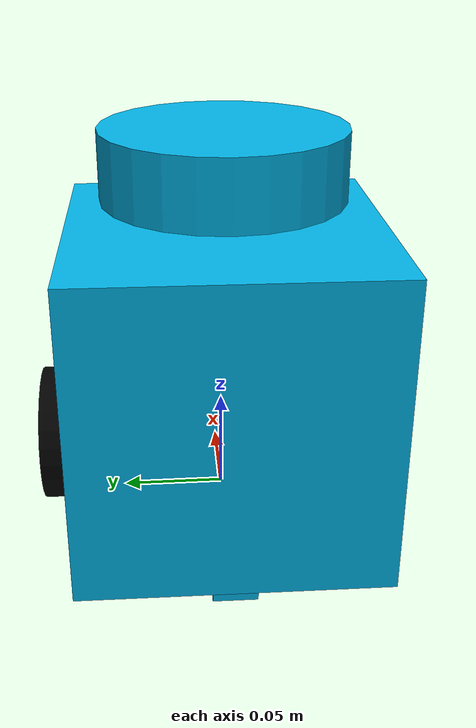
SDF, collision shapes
<?xml version='1.0'?>
<sdf version='1.7'>
  <model name='sandwich_bot'>
    <link name='base_footprint'>
      <inertial>
        <pose>-0.00429 0 0.030731 0 -0 0</pose>
        <mass>0.944735</mass>
        <inertia>
          <ixx>0.00717909</ixx>
          <ixy>-1.22941e-05</ixy>
          <ixz>0.000576549</ixz>
          <iyy>0.00721817</iyy>
          <iyz>-5.01209e-06</iyz>
          <izz>0.00413858</izz>
        </inertia>
      </inertial>
      <sensor name='camera_left' type='camera'>
        <camera>
          <horizontal_fov>1.047</horizontal_fov>
          <image>
            <width>320</width>
            <height>240</height>
          </image>
          <clip>
            <near>0.1</near>
            <far>100</far>
          </clip>
        </camera>
        <always_on>1</always_on>
        <update_rate>120</update_rate>
        <visualize>1</visualize>
        <topic>stereo_camera/left/image_raw</topic>
        <pose>0.039 0.03 0.155 0 -0 0</pose>
      </sensor>
      <sensor name='camera_right' type='camera'>
        <camera>
          <horizontal_fov>1.047</horizontal_fov>
          <image>
            <width>320</width>
            <height>240</height>
          </image>
          <clip>
            <near>0.1</near>
            <far>100</far>
          </clip>
        </camera>
        <always_on>1</always_on>
        <update_rate>120</update_rate>
        <visualize>1</visualize>
        <topic>stereo_camera/right/image_raw</topic>
        <pose>0.039 -0.03 0.155 0 -0 0</pose>
      </sensor>
      <sensor name='imu_sensor' type='imu'>
        <always_on>1</always_on>
        <update_rate>100</update_rate>
        <visualize>1</visualize>
        <topic>imu</topic>
        <pose>-0.032 0 0.078 0 -0 0</pose>
        <imu/>
      </sensor>
      <sensor name='gpu_lidar' type='gpu_lidar'>
        <topic>lidar</topic>
        <update_rate>5.5</update_rate>
        <ray>
          <scan>
            <horizontal>
              <samples>360</samples>
              <resolution>1</resolution>
              <min_angle>0</min_angle>
              <max_angle>6.28319</max_angle>
            </horizontal>
            <vertical>
              <samples>1</samples>
              <resolution>0.01</resolution>
              <min_angle>0</min_angle>
              <max_angle>0</max_angle>
            </vertical>
          </scan>
          <range>
            <min>0.15</min>
            <max>5.5</max>
            <resolution>0.017</resolution>
          </range>
          <noise>
            <type>gaussian</type>
            <mean>0</mean>
            <stddev>0.01</stddev>
          </noise>
        </ray>
        <always_on>1</always_on>
        <visualize>1</visualize>
        <pose>-0.032 0 0.182 0 -0 0</pose>
      </sensor>
      <self_collide>0</self_collide>
      <enable_wind>0</enable_wind>
      <kinematic>0</kinematic>
      <pose>0 0 0 0 -0 0</pose>
      <visual name='base_footprint_fixed_joint_lump__camera_link_visual_1'>
        <pose>0.035 0 0.155 1.57 -0 1.57</pose>
        <geometry>
          <mesh>
            <scale>0.001 0.001 0.001</scale>
            <uri>https://fuel.ignitionrobotics.org/1.0/rushikeshhalle/models/sandwich_bot_2_0_description/4/files/meshes/stereo_camera.stl</uri>
          </mesh>
        </geometry>
        <material>
          <ambient>0 0.7 0.9 1</ambient>
          <diffuse>0 0.7 0.9 1</diffuse>
          <shader type='pixel'/>
          <script>
            <name>ModelPreview_1::base_footprint::base_footprint_fixed_joint_lump__camera_link_visual_1_MATERIAL_</name>
            <uri>__default__</uri>
          </script>
        </material>
        <transparency>0</transparency>
        <cast_shadows>1</cast_shadows>
      </visual>
      <visual name='base_footprint_fixed_joint_lump__base_link_visual'>
        <pose>-0.032 0 0.01 0 -0 0</pose>
        <geometry>
          <mesh>
            <scale>0.001 0.001 0.001</scale>
            <uri>https://fuel.ignitionrobotics.org/1.0/rushikeshhalle/models/sandwich_bot_2_0_description/4/files/meshes/base.stl</uri>
          </mesh>
        </geometry>
        <material>
          <ambient>0.175 0.175 0.175 1</ambient>
          <diffuse>0.175 0.175 0.175 1</diffuse>
          <shader type='pixel'/>
          <script>
            <name>ModelPreview_1::base_footprint::base_footprint_fixed_joint_lump__base_link_visual_MATERIAL_</name>
            <uri>__default__</uri>
          </script>
        </material>
        <transparency>0</transparency>
        <cast_shadows>1</cast_shadows>
      </visual>
      <visual name='base_footprint_fixed_joint_lump__camera_link_left_visual_2'>
        <pose>0.039 0.03 0.155 1.57 -0 1.57</pose>
        <geometry>
          <box>
            <size>0.001 0.001 0.001</size>
          </box>
        </geometry>
        <material>
          <ambient>1 0 0 1</ambient>
          <diffuse>1 0 0 1</diffuse>
          <shader type='pixel'/>
          <script>
            <name>ModelPreview_1::base_footprint::base_footprint_fixed_joint_lump__camera_link_left_visual_2_MATERIAL_</name>
            <uri>__default__</uri>
          </script>
        </material>
        <transparency>0</transparency>
        <cast_shadows>1</cast_shadows>
      </visual>
      <visual name='base_footprint_fixed_joint_lump__camera_link_right_visual_3'>
        <pose>0.039 -0.03 0.155 1.57 -0 1.57</pose>
        <geometry>
          <box>
            <size>0.001 0.001 0.001</size>
          </box>
        </geometry>
        <material>
          <ambient>0.5 0.5 0 1</ambient>
          <diffuse>0.5 0.5 0 1</diffuse>
          <shader type='pixel'/>
          <script>
            <name>ModelPreview_1::base_footprint::base_footprint_fixed_joint_lump__camera_link_right_visual_3_MATERIAL_</name>
            <uri>__default__</uri>
          </script>
        </material>
        <transparency>0</transparency>
        <cast_shadows>1</cast_shadows>
      </visual>
      <visual name='base_footprint_fixed_joint_lump__base_scan_visual_4'>
        <pose>-0.032 0 0.182 0 -0 0</pose>
        <geometry>
          <cylinder>
            <length>0.0315</length>
            <radius>0.055</radius>
          </cylinder>
        </geometry>
        <material>
          <ambient>1 0 0 1</ambient>
          <diffuse>1 0 0 1</diffuse>
          <shader type='pixel'/>
          <script>
            <name>ModelPreview_1::base_footprint::base_footprint_fixed_joint_lump__base_scan_visual_4_MATERIAL_</name>
            <uri>__default__</uri>
          </script>
        </material>
        <transparency>0</transparency>
        <cast_shadows>1</cast_shadows>
      </visual>
      <collision name='base_footprint_fixed_joint_lump__base_link_collision'>
        <laser_retro>0</laser_retro>
        <max_contacts>10</max_contacts>
        <pose>-0.032 0 0.08 0 -0 0</pose>
        <geometry>
          <box>
            <size>0.14 0.14 0.143</size>
          </box>
        </geometry>
        <surface>
          <friction>
            <ode>
              <mu>1</mu>
              <mu2>1</mu2>
              <fdir1>0 0 0</fdir1>
              <slip1>0</slip1>
              <slip2>0</slip2>
            </ode>
            <torsional>
              <coefficient>1</coefficient>
              <patch_radius>0</patch_radius>
              <surface_radius>0</surface_radius>
              <use_patch_radius>1</use_patch_radius>
              <ode>
                <slip>0</slip>
              </ode>
            </torsional>
          </friction>
          <bounce>
            <restitution_coefficient>0</restitution_coefficient>
            <threshold>1e+06</threshold>
          </bounce>
          <contact>
            <collide_without_contact>0</collide_without_contact>
            <collide_without_contact_bitmask>1</collide_without_contact_bitmask>
            <collide_bitmask>1</collide_bitmask>
            <ode>
              <soft_cfm>0</soft_cfm>
              <soft_erp>0.2</soft_erp>
              <kp>1e+13</kp>
              <kd>1</kd>
              <max_vel>0.01</max_vel>
              <min_depth>0</min_depth>
            </ode>
            <bullet>
              <split_impulse>1</split_impulse>
              <split_impulse_penetration_threshold>-0.01</split_impulse_penetration_threshold>
              <soft_cfm>0</soft_cfm>
              <soft_erp>0.2</soft_erp>
              <kp>1e+13</kp>
              <kd>1</kd>
            </bullet>
          </contact>
        </surface>
      </collision>
      <collision name='base_footprint_fixed_joint_lump__camera_link_collision_1'>
        <laser_retro>0</laser_retro>
        <max_contacts>10</max_contacts>
        <pose>0.035 0 0.155 0 -0 0</pose>
        <geometry>
          <box>
            <size>0.01 0.08 0.01</size>
          </box>
        </geometry>
        <surface>
          <friction>
            <ode>
              <mu>1</mu>
              <mu2>1</mu2>
              <fdir1>0 0 0</fdir1>
              <slip1>0</slip1>
              <slip2>0</slip2>
            </ode>
            <torsional>
              <coefficient>1</coefficient>
              <patch_radius>0</patch_radius>
              <surface_radius>0</surface_radius>
              <use_patch_radius>1</use_patch_radius>
              <ode>
                <slip>0</slip>
              </ode>
            </torsional>
          </friction>
          <bounce>
            <restitution_coefficient>0</restitution_coefficient>
            <threshold>1e+06</threshold>
          </bounce>
          <contact>
            <collide_without_contact>0</collide_without_contact>
            <collide_without_contact_bitmask>1</collide_without_contact_bitmask>
            <collide_bitmask>1</collide_bitmask>
            <ode>
              <soft_cfm>0</soft_cfm>
              <soft_erp>0.2</soft_erp>
              <kp>1e+13</kp>
              <kd>1</kd>
              <max_vel>0.01</max_vel>
              <min_depth>0</min_depth>
            </ode>
            <bullet>
              <split_impulse>1</split_impulse>
              <split_impulse_penetration_threshold>-0.01</split_impulse_penetration_threshold>
              <soft_cfm>0</soft_cfm>
              <soft_erp>0.2</soft_erp>
              <kp>1e+13</kp>
              <kd>1</kd>
            </bullet>
          </contact>
        </surface>
      </collision>
      <collision name='base_footprint_fixed_joint_lump__caster_back_link_collision_2'>
        <laser_retro>0</laser_retro>
        <max_contacts>10</max_contacts>
        <pose>-0.081 1e-06 0.004501 -1.57 0 0</pose>
        <geometry>
          <box>
            <size>0.03 0.009 0.02</size>
          </box>
        </geometry>
        <surface>
          <friction>
            <ode>
              <mu>0</mu>
              <mu2>0</mu2>
              <fdir1>0 0 0</fdir1>
              <slip1>0</slip1>
              <slip2>0</slip2>
            </ode>
            <torsional>
              <coefficient>1</coefficient>
              <patch_radius>0</patch_radius>
              <surface_radius>0</surface_radius>
              <use_patch_radius>1</use_patch_radius>
              <ode>
                <slip>0</slip>
              </ode>
            </torsional>
          </friction>
          <bounce>
            <restitution_coefficient>0</restitution_coefficient>
            <threshold>1e+06</threshold>
          </bounce>
          <contact>
            <collide_without_contact>0</collide_without_contact>
            <collide_without_contact_bitmask>1</collide_without_contact_bitmask>
            <collide_bitmask>1</collide_bitmask>
            <ode>
              <soft_cfm>0</soft_cfm>
              <soft_erp>0.2</soft_erp>
              <kp>1e+13</kp>
              <kd>1</kd>
              <max_vel>0.01</max_vel>
              <min_depth>0</min_depth>
            </ode>
            <bullet>
              <split_impulse>1</split_impulse>
              <split_impulse_penetration_threshold>-0.01</split_impulse_penetration_threshold>
              <soft_cfm>0</soft_cfm>
              <soft_erp>0.2</soft_erp>
              <kp>1e+13</kp>
              <kd>1</kd>
            </bullet>
          </contact>
        </surface>
      </collision>
      <collision name='base_footprint_fixed_joint_lump__base_scan_collision_3'>
        <laser_retro>0</laser_retro>
        <max_contacts>10</max_contacts>
        <pose>-0.017 0 0.1755 0 -0 0</pose>
        <geometry>
          <cylinder>
            <radius>0.055</radius>
            <length>0.0315</length>
          </cylinder>
        </geometry>
        <surface>
          <friction>
            <ode>
              <mu>1</mu>
              <mu2>1</mu2>
              <fdir1>0 0 0</fdir1>
              <slip1>0</slip1>
              <slip2>0</slip2>
            </ode>
            <torsional>
              <coefficient>1</coefficient>
              <patch_radius>0</patch_radius>
              <surface_radius>0</surface_radius>
              <use_patch_radius>1</use_patch_radius>
              <ode>
                <slip>0</slip>
              </ode>
            </torsional>
          </friction>
          <bounce>
            <restitution_coefficient>0</restitution_coefficient>
            <threshold>1e+06</threshold>
          </bounce>
          <contact>
            <collide_without_contact>0</collide_without_contact>
            <collide_without_contact_bitmask>1</collide_without_contact_bitmask>
            <collide_bitmask>1</collide_bitmask>
            <ode>
              <soft_cfm>0</soft_cfm>
              <soft_erp>0.2</soft_erp>
              <kp>1e+13</kp>
              <kd>1</kd>
              <max_vel>0.01</max_vel>
              <min_depth>0</min_depth>
            </ode>
            <bullet>
              <split_impulse>1</split_impulse>
              <split_impulse_penetration_threshold>-0.01</split_impulse_penetration_threshold>
              <soft_cfm>0</soft_cfm>
              <soft_erp>0.2</soft_erp>
              <kp>1e+13</kp>
              <kd>1</kd>
            </bullet>
          </contact>
        </surface>
      </collision>
    </link>
    <link name='wheel_left_link'>
      <pose>0 0.08 0.033 -1.57 0 0</pose>
      <inertial>
        <pose>0 0 0 0 -0 0</pose>
        <mass>0.0284989</mass>
        <inertia>
          <ixx>1.11756e-05</ixx>
          <ixy>-4.23698e-11</ixy>
          <ixz>-5.93817e-09</ixz>
          <iyy>1.11924e-05</iyy>
          <iyz>-1.44001e-11</iyz>
          <izz>2.07126e-05</izz>
        </inertia>
      </inertial>
      <self_collide>0</self_collide>
      <enable_wind>0</enable_wind>
      <kinematic>0</kinematic>
      <visual name='wheel_left_link_visual'>
        <pose>0 0 0 1.57 -0 0</pose>
        <geometry>
          <mesh>
            <scale>0.001 0.001 0.001</scale>
            <uri>https://fuel.ignitionrobotics.org/1.0/rushikeshhalle/models/sandwich_bot_2_0_description/4/files/meshes/left_tire.stl</uri>
          </mesh>
        </geometry>
        <material>
          <ambient>0 0 0 1</ambient>
          <diffuse>0 0 0 1</diffuse>
          <shader type='pixel'/>
          <script>
            <name>ModelPreview_1::wheel_left_link::wheel_left_link_visual_MATERIAL_</name>
            <uri>__default__</uri>
          </script>
        </material>
        <transparency>0</transparency>
        <cast_shadows>1</cast_shadows>
      </visual>
      <collision name='wheel_left_link_collision'>
        <laser_retro>0</laser_retro>
        <max_contacts>10</max_contacts>
        <pose>0 0 0 0 -0 0</pose>
        <geometry>
          <cylinder>
            <radius>0.033</radius>
            <length>0.018</length>
          </cylinder>
        </geometry>
        <surface>
          <friction>
            <ode>
              <mu>0.9</mu>
              <mu2>0.9</mu2>
              <fdir1>1 0 0</fdir1>
              <slip1>0</slip1>
              <slip2>0</slip2>
            </ode>
            <torsional>
              <coefficient>1</coefficient>
              <patch_radius>0</patch_radius>
              <surface_radius>0</surface_radius>
              <use_patch_radius>1</use_patch_radius>
              <ode>
                <slip>0</slip>
              </ode>
            </torsional>
          </friction>
          <bounce>
            <restitution_coefficient>0</restitution_coefficient>
            <threshold>1e+06</threshold>
          </bounce>
          <contact>
            <collide_without_contact>0</collide_without_contact>
            <collide_without_contact_bitmask>1</collide_without_contact_bitmask>
            <collide_bitmask>1</collide_bitmask>
            <ode>
              <soft_cfm>0</soft_cfm>
              <soft_erp>0.2</soft_erp>
              <kp>1e+13</kp>
              <kd>1</kd>
              <max_vel>0.01</max_vel>
              <min_depth>0</min_depth>
            </ode>
            <bullet>
              <split_impulse>1</split_impulse>
              <split_impulse_penetration_threshold>-0.01</split_impulse_penetration_threshold>
              <soft_cfm>0</soft_cfm>
              <soft_erp>0.2</soft_erp>
              <kp>1e+13</kp>
              <kd>1</kd>
            </bullet>
          </contact>
        </surface>
      </collision>
    </link>
    <link name='wheel_right_link'>
      <pose>0 -0.08 0.033 -1.57 0 0</pose>
      <inertial>
        <pose>0 0 0 0 -0 0</pose>
        <mass>0.0284989</mass>
        <inertia>
          <ixx>1.11756e-05</ixx>
          <ixy>-4.23698e-11</ixy>
          <ixz>-5.93817e-09</ixz>
          <iyy>1.11924e-05</iyy>
          <iyz>-1.44001e-11</iyz>
          <izz>2.07126e-05</izz>
        </inertia>
      </inertial>
      <self_collide>0</self_collide>
      <enable_wind>0</enable_wind>
      <kinematic>0</kinematic>
      <visual name='wheel_right_link_visual'>
        <pose>0 0 0 1.57 -0 0</pose>
        <geometry>
          <mesh>
            <scale>0.001 0.001 0.001</scale>
            <uri>https://fuel.ignitionrobotics.org/1.0/rushikeshhalle/models/sandwich_bot_2_0_description/4/files/meshes/right_tire.stl</uri>
          </mesh>
        </geometry>
        <material>
          <ambient>0 0 0 1</ambient>
          <diffuse>0 0 0 1</diffuse>
          <shader type='pixel'/>
          <script>
            <name>ModelPreview_1::wheel_right_link::wheel_right_link_visual_MATERIAL_</name>
            <uri>__default__</uri>
          </script>
        </material>
        <transparency>0</transparency>
        <cast_shadows>1</cast_shadows>
      </visual>
      <collision name='wheel_right_link_collision'>
        <laser_retro>0</laser_retro>
        <max_contacts>10</max_contacts>
        <pose>0 0 0 0 -0 0</pose>
        <geometry>
          <cylinder>
            <radius>0.033</radius>
            <length>0.018</length>
          </cylinder>
        </geometry>
        <surface>
          <friction>
            <ode>
              <mu>0.9</mu>
              <mu2>0.9</mu2>
              <fdir1>1 0 0</fdir1>
              <slip1>0</slip1>
              <slip2>0</slip2>
            </ode>
            <torsional>
              <coefficient>1</coefficient>
              <patch_radius>0</patch_radius>
              <surface_radius>0</surface_radius>
              <use_patch_radius>1</use_patch_radius>
              <ode>
                <slip>0</slip>
              </ode>
            </torsional>
          </friction>
          <bounce>
            <restitution_coefficient>0</restitution_coefficient>
            <threshold>1e+06</threshold>
          </bounce>
          <contact>
            <collide_without_contact>0</collide_without_contact>
            <collide_without_contact_bitmask>1</collide_without_contact_bitmask>
            <collide_bitmask>1</collide_bitmask>
            <ode>
              <soft_cfm>0</soft_cfm>
              <soft_erp>0.2</soft_erp>
              <kp>1e+13</kp>
              <kd>1</kd>
              <max_vel>0.01</max_vel>
              <min_depth>0</min_depth>
            </ode>
            <bullet>
              <split_impulse>1</split_impulse>
              <split_impulse_penetration_threshold>-0.01</split_impulse_penetration_threshold>
              <soft_cfm>0</soft_cfm>
              <soft_erp>0.2</soft_erp>
              <kp>1e+13</kp>
              <kd>1</kd>
            </bullet>
          </contact>
        </surface>
      </collision>
    </link>
    <joint name='wheel_left_joint' type='revolute'>
      <parent>base_footprint</parent>
      <child>wheel_left_link</child>
      <pose>0 0 0 0 -0 0</pose>
      <axis>
        <xyz>0 0 1</xyz>
        <limit>
          <lower>-1e+16</lower>
          <upper>1e+16</upper>
          <effort>-1</effort>
          <velocity>-1</velocity>
        </limit>
        <dynamics>
          <spring_reference>0</spring_reference>
          <spring_stiffness>0</spring_stiffness>
          <damping>0</damping>
          <friction>0</friction>
        </dynamics>
      </axis>
      <physics>
        <ode>
          <limit>
            <cfm>0</cfm>
            <erp>0.2</erp>
          </limit>
          <suspension>
            <cfm>0</cfm>
            <erp>0.2</erp>
          </suspension>
        </ode>
      </physics>
    </joint>
    <joint name='wheel_right_joint' type='revolute'>
      <parent>base_footprint</parent>
      <child>wheel_right_link</child>
      <pose>0 0 0 0 -0 0</pose>
      <axis>
        <xyz>0 0 1</xyz>
        <limit>
          <lower>-1e+16</lower>
          <upper>1e+16</upper>
          <effort>-1</effort>
          <velocity>-1</velocity>
        </limit>
        <dynamics>
          <spring_reference>0</spring_reference>
          <spring_stiffness>0</spring_stiffness>
          <damping>0</damping>
          <friction>0</friction>
        </dynamics>
      </axis>
      <physics>
        <ode>
          <limit>
            <cfm>0</cfm>
            <erp>0.2</erp>
          </limit>
          <suspension>
            <cfm>0</cfm>
            <erp>0.2</erp>
          </suspension>
        </ode>
      </physics>
    </joint>
    <static>0</static>
    <allow_auto_disable>1</allow_auto_disable>
    <plugin name='ignition::gazebo::systems::DiffDrive' filename='ignition-gazebo-diff-drive-system'>
      <left_joint>wheel_left_joint</left_joint>
      <right_joint>wheel_right_joint</right_joint>
      <wheel_separation>0.160</wheel_separation>
      <wheel_radius>0.033</wheel_radius>
      <topic>cmd_vel</topic>
      <frame_id>odom</frame_id>
      <child_frame_id>base_footprint</child_frame_id>
    </plugin>
    <plugin name='ignition::gazebo::systems::JointStatePublisher' filename='libignition-gazebo-joint-state-publisher-system.so'/>
  </model>
</sdf>
